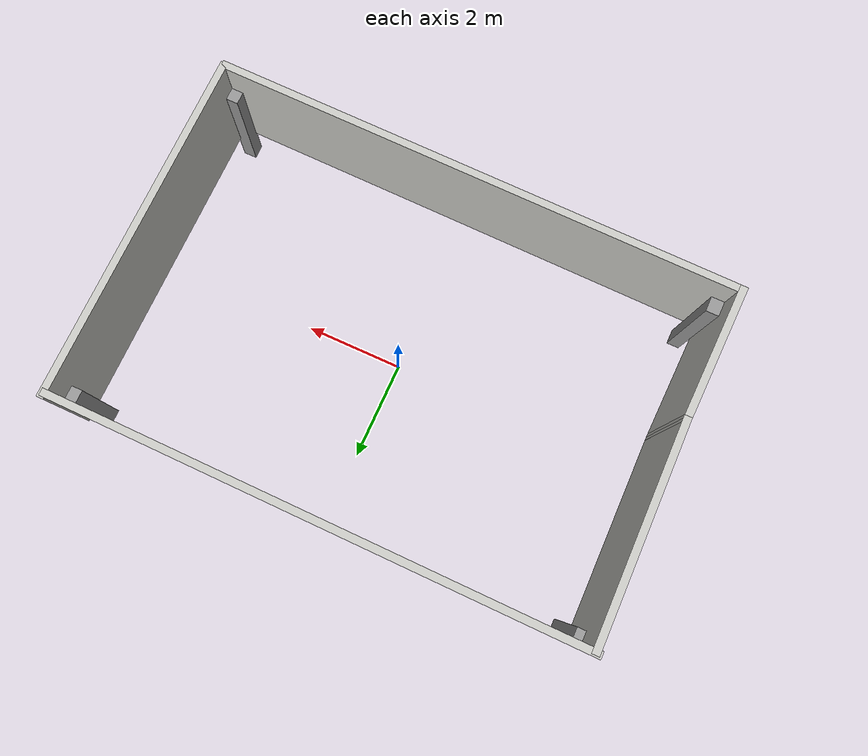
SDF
<?xml version='1.0'?>
<sdf version='1.7'>
  <model name='tello_env'>
    <link name='Wall_3'>
      <pose>-5.30935 -2.12873 0 0 0 -1.60243</pose>
      <self_collide>0</self_collide>
      <enable_wind>0</enable_wind>
      <kinematic>0</kinematic>
      <visual name='Wall_3_Visual'>
        <pose>0 0 1.25 0 -0 0</pose>
        <geometry>
          <box>
            <size>2.83045 0.15 2.5</size>
          </box>
        </geometry>
        <material>
          <script>
            <uri>file://media/materials/scripts/gazebo.material</uri>
            <name>Gazebo/CeilingTiled</name>
          </script>
          <ambient>0.996078 0.47451 0.0196078 1</ambient>
          <shader type='pixel'/>
        </material>
        <meta>
          <layer>0</layer>
        </meta>
        <transparency>0</transparency>
        <cast_shadows>1</cast_shadows>
      </visual>
      <collision name='Wall_3_Collision'>
        <laser_retro>0</laser_retro>
        <max_contacts>10</max_contacts>
        <pose>0 0 1.25 0 -0 0</pose>
        <geometry>
          <box>
            <size>2.83045 0.15 2.5</size>
          </box>
        </geometry>
        <surface>
          <friction>
            <ode>
              <mu>1</mu>
              <mu2>1</mu2>
              <fdir1>0 0 0</fdir1>
              <slip1>0</slip1>
              <slip2>0</slip2>
            </ode>
            <torsional>
              <coefficient>1</coefficient>
              <patch_radius>0</patch_radius>
              <surface_radius>0</surface_radius>
              <use_patch_radius>1</use_patch_radius>
              <ode>
                <slip>0</slip>
              </ode>
            </torsional>
          </friction>
          <bounce>
            <restitution_coefficient>0</restitution_coefficient>
            <threshold>1e+06</threshold>
          </bounce>
          <contact>
            <collide_without_contact>0</collide_without_contact>
            <collide_without_contact_bitmask>1</collide_without_contact_bitmask>
            <collide_bitmask>1</collide_bitmask>
            <ode>
              <soft_cfm>0</soft_cfm>
              <soft_erp>0.2</soft_erp>
              <kp>1e+13</kp>
              <kd>1</kd>
              <max_vel>0.01</max_vel>
              <min_depth>0</min_depth>
            </ode>
            <bullet>
              <split_impulse>1</split_impulse>
              <split_impulse_penetration_threshold>-0.01</split_impulse_penetration_threshold>
              <soft_cfm>0</soft_cfm>
              <soft_erp>0.2</soft_erp>
              <kp>1e+13</kp>
              <kd>1</kd>
            </bullet>
          </contact>
        </surface>
      </collision>
    </link>
    <link name='Wall_4'>
      <pose>-0.015892 -3.51762 0 0 0 -0.009201</pose>
      <self_collide>0</self_collide>
      <enable_wind>0</enable_wind>
      <kinematic>0</kinematic>
      <visual name='Wall_4_Visual'>
        <pose>0 0 1.25 0 -0 0</pose>
        <geometry>
          <box>
            <size>10.8222 0.15 2.5</size>
          </box>
        </geometry>
        <material>
          <script>
            <uri>file://media/materials/scripts/gazebo.material</uri>
            <name>Gazebo/CeilingTiled</name>
          </script>
          <ambient>0.996078 0.47451 0.0196078 1</ambient>
          <shader type='pixel'/>
        </material>
        <meta>
          <layer>0</layer>
        </meta>
        <transparency>0</transparency>
        <cast_shadows>1</cast_shadows>
      </visual>
      <collision name='Wall_4_Collision'>
        <laser_retro>0</laser_retro>
        <max_contacts>10</max_contacts>
        <pose>0 0 1.25 0 -0 0</pose>
        <geometry>
          <box>
            <size>10.8222 0.15 2.5</size>
          </box>
        </geometry>
        <surface>
          <friction>
            <ode>
              <mu>1</mu>
              <mu2>1</mu2>
              <fdir1>0 0 0</fdir1>
              <slip1>0</slip1>
              <slip2>0</slip2>
            </ode>
            <torsional>
              <coefficient>1</coefficient>
              <patch_radius>0</patch_radius>
              <surface_radius>0</surface_radius>
              <use_patch_radius>1</use_patch_radius>
              <ode>
                <slip>0</slip>
              </ode>
            </torsional>
          </friction>
          <bounce>
            <restitution_coefficient>0</restitution_coefficient>
            <threshold>1e+06</threshold>
          </bounce>
          <contact>
            <collide_without_contact>0</collide_without_contact>
            <collide_without_contact_bitmask>1</collide_without_contact_bitmask>
            <collide_bitmask>1</collide_bitmask>
            <ode>
              <soft_cfm>0</soft_cfm>
              <soft_erp>0.2</soft_erp>
              <kp>1e+13</kp>
              <kd>1</kd>
              <max_vel>0.01</max_vel>
              <min_depth>0</min_depth>
            </ode>
            <bullet>
              <split_impulse>1</split_impulse>
              <split_impulse_penetration_threshold>-0.01</split_impulse_penetration_threshold>
              <soft_cfm>0</soft_cfm>
              <soft_erp>0.2</soft_erp>
              <kp>1e+13</kp>
              <kd>1</kd>
            </bullet>
          </contact>
        </surface>
      </collision>
    </link>
    <link name='Wall_5'>
      <pose>5.35407 0.017399 0 0 -0 1.5708</pose>
      <self_collide>0</self_collide>
      <enable_wind>0</enable_wind>
      <kinematic>0</kinematic>
      <visual name='Wall_5_Visual'>
        <pose>0 0 1.25 0 -0 0</pose>
        <geometry>
          <box>
            <size>7.25 0.15 2.5</size>
          </box>
        </geometry>
        <material>
          <script>
            <uri>file://media/materials/scripts/gazebo.material</uri>
            <name>Gazebo/CeilingTiled</name>
          </script>
          <ambient>0.996078 0.47451 0.0196078 1</ambient>
          <shader type='pixel'/>
        </material>
        <meta>
          <layer>0</layer>
        </meta>
        <transparency>0</transparency>
        <cast_shadows>1</cast_shadows>
      </visual>
      <collision name='Wall_5_Collision'>
        <laser_retro>0</laser_retro>
        <max_contacts>10</max_contacts>
        <pose>0 0 1.25 0 -0 0</pose>
        <geometry>
          <box>
            <size>7.25 0.15 2.5</size>
          </box>
        </geometry>
        <surface>
          <friction>
            <ode>
              <mu>1</mu>
              <mu2>1</mu2>
              <fdir1>0 0 0</fdir1>
              <slip1>0</slip1>
              <slip2>0</slip2>
            </ode>
            <torsional>
              <coefficient>1</coefficient>
              <patch_radius>0</patch_radius>
              <surface_radius>0</surface_radius>
              <use_patch_radius>1</use_patch_radius>
              <ode>
                <slip>0</slip>
              </ode>
            </torsional>
          </friction>
          <bounce>
            <restitution_coefficient>0</restitution_coefficient>
            <threshold>1e+06</threshold>
          </bounce>
          <contact>
            <collide_without_contact>0</collide_without_contact>
            <collide_without_contact_bitmask>1</collide_without_contact_bitmask>
            <collide_bitmask>1</collide_bitmask>
            <ode>
              <soft_cfm>0</soft_cfm>
              <soft_erp>0.2</soft_erp>
              <kp>1e+13</kp>
              <kd>1</kd>
              <max_vel>0.01</max_vel>
              <min_depth>0</min_depth>
            </ode>
            <bullet>
              <split_impulse>1</split_impulse>
              <split_impulse_penetration_threshold>-0.01</split_impulse_penetration_threshold>
              <soft_cfm>0</soft_cfm>
              <soft_erp>0.2</soft_erp>
              <kp>1e+13</kp>
              <kd>1</kd>
            </bullet>
          </contact>
        </surface>
      </collision>
    </link>
    <link name='Wall_6'>
      <pose>0.002641 3.5377 0 0 -0 3.14076</pose>
      <self_collide>0</self_collide>
      <enable_wind>0</enable_wind>
      <kinematic>0</kinematic>
      <visual name='Wall_6_Visual'>
        <pose>0 0 1.25 0 -0 0</pose>
        <geometry>
          <box>
            <size>10.7846 0.15 2.5</size>
          </box>
        </geometry>
        <material>
          <script>
            <uri>file://media/materials/scripts/gazebo.material</uri>
            <name>Gazebo/CeilingTiled</name>
          </script>
          <ambient>0.996078 0.47451 0.0196078 1</ambient>
          <shader type='pixel'/>
        </material>
        <meta>
          <layer>0</layer>
        </meta>
        <transparency>0</transparency>
        <cast_shadows>1</cast_shadows>
      </visual>
      <collision name='Wall_6_Collision'>
        <laser_retro>0</laser_retro>
        <max_contacts>10</max_contacts>
        <pose>0 0 1.25 0 -0 0</pose>
        <geometry>
          <box>
            <size>10.7846 0.15 2.5</size>
          </box>
        </geometry>
        <surface>
          <friction>
            <ode>
              <mu>1</mu>
              <mu2>1</mu2>
              <fdir1>0 0 0</fdir1>
              <slip1>0</slip1>
              <slip2>0</slip2>
            </ode>
            <torsional>
              <coefficient>1</coefficient>
              <patch_radius>0</patch_radius>
              <surface_radius>0</surface_radius>
              <use_patch_radius>1</use_patch_radius>
              <ode>
                <slip>0</slip>
              </ode>
            </torsional>
          </friction>
          <bounce>
            <restitution_coefficient>0</restitution_coefficient>
            <threshold>1e+06</threshold>
          </bounce>
          <contact>
            <collide_without_contact>0</collide_without_contact>
            <collide_without_contact_bitmask>1</collide_without_contact_bitmask>
            <collide_bitmask>1</collide_bitmask>
            <ode>
              <soft_cfm>0</soft_cfm>
              <soft_erp>0.2</soft_erp>
              <kp>1e+13</kp>
              <kd>1</kd>
              <max_vel>0.01</max_vel>
              <min_depth>0</min_depth>
            </ode>
            <bullet>
              <split_impulse>1</split_impulse>
              <split_impulse_penetration_threshold>-0.01</split_impulse_penetration_threshold>
              <soft_cfm>0</soft_cfm>
              <soft_erp>0.2</soft_erp>
              <kp>1e+13</kp>
              <kd>1</kd>
            </bullet>
          </contact>
        </surface>
      </collision>
    </link>
    <link name='Wall_7'>
      <pose>-5.27376 1.35953 0 0 0 -1.56763</pose>
      <self_collide>0</self_collide>
      <enable_wind>0</enable_wind>
      <kinematic>0</kinematic>
      <visual name='Wall_7_Visual'>
        <pose>0 0 1.25 0 -0 0</pose>
        <geometry>
          <box>
            <size>4.44695 0.15 2.5</size>
          </box>
        </geometry>
        <material>
          <script>
            <uri>file://media/materials/scripts/gazebo.material</uri>
            <name>Gazebo/CeilingTiled</name>
          </script>
          <ambient>0.996078 0.47451 0.0196078 1</ambient>
          <shader type='pixel'/>
        </material>
        <meta>
          <layer>0</layer>
        </meta>
        <transparency>0</transparency>
        <cast_shadows>1</cast_shadows>
      </visual>
      <collision name='Wall_7_Collision'>
        <laser_retro>0</laser_retro>
        <max_contacts>10</max_contacts>
        <pose>0 0 1.25 0 -0 0</pose>
        <geometry>
          <box>
            <size>4.44695 0.15 2.5</size>
          </box>
        </geometry>
        <surface>
          <friction>
            <ode>
              <mu>1</mu>
              <mu2>1</mu2>
              <fdir1>0 0 0</fdir1>
              <slip1>0</slip1>
              <slip2>0</slip2>
            </ode>
            <torsional>
              <coefficient>1</coefficient>
              <patch_radius>0</patch_radius>
              <surface_radius>0</surface_radius>
              <use_patch_radius>1</use_patch_radius>
              <ode>
                <slip>0</slip>
              </ode>
            </torsional>
          </friction>
          <bounce>
            <restitution_coefficient>0</restitution_coefficient>
            <threshold>1e+06</threshold>
          </bounce>
          <contact>
            <collide_without_contact>0</collide_without_contact>
            <collide_without_contact_bitmask>1</collide_without_contact_bitmask>
            <collide_bitmask>1</collide_bitmask>
            <ode>
              <soft_cfm>0</soft_cfm>
              <soft_erp>0.2</soft_erp>
              <kp>1e+13</kp>
              <kd>1</kd>
              <max_vel>0.01</max_vel>
              <min_depth>0</min_depth>
            </ode>
            <bullet>
              <split_impulse>1</split_impulse>
              <split_impulse_penetration_threshold>-0.01</split_impulse_penetration_threshold>
              <soft_cfm>0</soft_cfm>
              <soft_erp>0.2</soft_erp>
              <kp>1e+13</kp>
              <kd>1</kd>
            </bullet>
          </contact>
        </surface>
      </collision>
    </link>
    <link name='link_1'>
      <inertial>
        <mass>0.145453</mass>
        <inertia>
          <ixx>0.0780546</ixx>
          <ixy>0</ixy>
          <ixz>0</ixz>
          <iyy>0.0779226</iyy>
          <iyz>0</iyz>
          <izz>0.00140396</izz>
        </inertia>
        <pose>0 0 0 0 -0 0</pose>
      </inertial>
      <pose>-5.14452 3.38778 0.219981 0 -0 0</pose>
      <visual name='visual'>
        <pose>0 0 0 0 -0 0</pose>
        <geometry>
          <box>
            <size>0.229058 0.251715 2.52512</size>
          </box>
        </geometry>
        <material>
          <lighting>1</lighting>
          <script>
            <uri>file://media/materials/scripts/gazebo.material</uri>
            <name>Gazebo/Grey</name>
          </script>
          <shader type='pixel'/>
        </material>
        <transparency>0</transparency>
        <cast_shadows>1</cast_shadows>
      </visual>
      <collision name='collision'>
        <laser_retro>0</laser_retro>
        <max_contacts>10</max_contacts>
        <pose>0 0 0 0 -0 0</pose>
        <geometry>
          <box>
            <size>0.229058 0.251715 2.52512</size>
          </box>
        </geometry>
        <surface>
          <friction>
            <ode>
              <mu>1</mu>
              <mu2>1</mu2>
              <fdir1>0 0 0</fdir1>
              <slip1>0</slip1>
              <slip2>0</slip2>
            </ode>
            <torsional>
              <coefficient>1</coefficient>
              <patch_radius>0</patch_radius>
              <surface_radius>0</surface_radius>
              <use_patch_radius>1</use_patch_radius>
              <ode>
                <slip>0</slip>
              </ode>
            </torsional>
          </friction>
          <bounce>
            <restitution_coefficient>0</restitution_coefficient>
            <threshold>1e+06</threshold>
          </bounce>
          <contact>
            <collide_without_contact>0</collide_without_contact>
            <collide_without_contact_bitmask>1</collide_without_contact_bitmask>
            <collide_bitmask>1</collide_bitmask>
            <ode>
              <soft_cfm>0</soft_cfm>
              <soft_erp>0.2</soft_erp>
              <kp>1e+13</kp>
              <kd>1</kd>
              <max_vel>0.01</max_vel>
              <min_depth>0</min_depth>
            </ode>
            <bullet>
              <split_impulse>1</split_impulse>
              <split_impulse_penetration_threshold>-0.01</split_impulse_penetration_threshold>
              <soft_cfm>0</soft_cfm>
              <soft_erp>0.2</soft_erp>
              <kp>1e+13</kp>
              <kd>1</kd>
            </bullet>
          </contact>
        </surface>
      </collision>
    </link>
    <link name='link_3'>
      <inertial>
        <mass>0.209705</mass>
        <inertia>
          <ixx>0.120516</ixx>
          <ixy>0</ixy>
          <ixz>0</ixz>
          <iyy>0.12008</iyy>
          <iyz>0</iyz>
          <izz>0.00284342</izz>
        </inertia>
        <pose>0 0 0 0 -0 0</pose>
      </inertial>
      <pose>-5.13828 -3.23981 0.5 0 -0 0</pose>
      <visual name='visual'>
        <pose>0 0 0 0 -0 0</pose>
        <geometry>
          <box>
            <size>0.262498 0.306275 2.60816</size>
          </box>
        </geometry>
        <material>
          <lighting>1</lighting>
          <script>
            <uri>file://media/materials/scripts/gazebo.material</uri>
            <name>Gazebo/Grey</name>
          </script>
          <shader type='pixel'/>
        </material>
        <transparency>0</transparency>
        <cast_shadows>1</cast_shadows>
      </visual>
      <collision name='collision'>
        <laser_retro>0</laser_retro>
        <max_contacts>10</max_contacts>
        <pose>0 0 0 0 -0 0</pose>
        <geometry>
          <box>
            <size>0.262498 0.306275 2.60816</size>
          </box>
        </geometry>
        <surface>
          <friction>
            <ode>
              <mu>1</mu>
              <mu2>1</mu2>
              <fdir1>0 0 0</fdir1>
              <slip1>0</slip1>
              <slip2>0</slip2>
            </ode>
            <torsional>
              <coefficient>1</coefficient>
              <patch_radius>0</patch_radius>
              <surface_radius>0</surface_radius>
              <use_patch_radius>1</use_patch_radius>
              <ode>
                <slip>0</slip>
              </ode>
            </torsional>
          </friction>
          <bounce>
            <restitution_coefficient>0</restitution_coefficient>
            <threshold>1e+06</threshold>
          </bounce>
          <contact>
            <collide_without_contact>0</collide_without_contact>
            <collide_without_contact_bitmask>1</collide_without_contact_bitmask>
            <collide_bitmask>1</collide_bitmask>
            <ode>
              <soft_cfm>0</soft_cfm>
              <soft_erp>0.2</soft_erp>
              <kp>1e+13</kp>
              <kd>1</kd>
              <max_vel>0.01</max_vel>
              <min_depth>0</min_depth>
            </ode>
            <bullet>
              <split_impulse>1</split_impulse>
              <split_impulse_penetration_threshold>-0.01</split_impulse_penetration_threshold>
              <soft_cfm>0</soft_cfm>
              <soft_erp>0.2</soft_erp>
              <kp>1e+13</kp>
              <kd>1</kd>
            </bullet>
          </contact>
        </surface>
      </collision>
    </link>
    <link name='link_4'>
      <inertial>
        <mass>0.182365</mass>
        <inertia>
          <ixx>0.0831225</ixx>
          <ixy>0</ixy>
          <ixz>0</ixz>
          <iyy>0.0831737</iyy>
          <iyz>0</iyz>
          <izz>0.00238793</izz>
        </inertia>
        <pose>0 0 0 0 -0 0</pose>
      </inertial>
      <pose>5.19454 3.32834 0.5 0 -0 0</pose>
      <visual name='visual'>
        <pose>0 0 0 0 -0 0</pose>
        <geometry>
          <box>
            <size>0.283285 0.277273 2.32223</size>
          </box>
        </geometry>
        <material>
          <lighting>1</lighting>
          <script>
            <uri>file://media/materials/scripts/gazebo.material</uri>
            <name>Gazebo/Grey</name>
          </script>
          <shader type='pixel'/>
        </material>
        <transparency>0</transparency>
        <cast_shadows>1</cast_shadows>
      </visual>
      <collision name='collision'>
        <laser_retro>0</laser_retro>
        <max_contacts>10</max_contacts>
        <pose>0 0 0 0 -0 0</pose>
        <geometry>
          <box>
            <size>0.283285 0.277273 2.32223</size>
          </box>
        </geometry>
        <surface>
          <friction>
            <ode>
              <mu>1</mu>
              <mu2>1</mu2>
              <fdir1>0 0 0</fdir1>
              <slip1>0</slip1>
              <slip2>0</slip2>
            </ode>
            <torsional>
              <coefficient>1</coefficient>
              <patch_radius>0</patch_radius>
              <surface_radius>0</surface_radius>
              <use_patch_radius>1</use_patch_radius>
              <ode>
                <slip>0</slip>
              </ode>
            </torsional>
          </friction>
          <bounce>
            <restitution_coefficient>0</restitution_coefficient>
            <threshold>1e+06</threshold>
          </bounce>
          <contact>
            <collide_without_contact>0</collide_without_contact>
            <collide_without_contact_bitmask>1</collide_without_contact_bitmask>
            <collide_bitmask>1</collide_bitmask>
            <ode>
              <soft_cfm>0</soft_cfm>
              <soft_erp>0.2</soft_erp>
              <kp>1e+13</kp>
              <kd>1</kd>
              <max_vel>0.01</max_vel>
              <min_depth>0</min_depth>
            </ode>
            <bullet>
              <split_impulse>1</split_impulse>
              <split_impulse_penetration_threshold>-0.01</split_impulse_penetration_threshold>
              <soft_cfm>0</soft_cfm>
              <soft_erp>0.2</soft_erp>
              <kp>1e+13</kp>
              <kd>1</kd>
            </bullet>
          </contact>
        </surface>
      </collision>
    </link>
    <link name='link_5'>
      <inertial>
        <mass>0.201819</mass>
        <inertia>
          <ixx>0.107326</ixx>
          <ixy>0</ixy>
          <ixz>0</ixz>
          <iyy>0.107282</iyy>
          <iyz>0</iyz>
          <izz>0.0027057</izz>
        </inertia>
        <pose>0 0 0 0 -0 0</pose>
      </inertial>
      <pose>5.17248 -3.37774 0.5 0 -0 0</pose>
      <visual name='visual'>
        <pose>0 0 0 0 -0 0</pose>
        <geometry>
          <box>
            <size>0.281288 0.285931 2.50994</size>
          </box>
        </geometry>
        <material>
          <lighting>1</lighting>
          <script>
            <uri>file://media/materials/scripts/gazebo.material</uri>
            <name>Gazebo/Grey</name>
          </script>
          <shader type='pixel'/>
        </material>
        <transparency>0</transparency>
        <cast_shadows>1</cast_shadows>
      </visual>
      <collision name='collision'>
        <laser_retro>0</laser_retro>
        <max_contacts>10</max_contacts>
        <pose>0 0 0 0 -0 0</pose>
        <geometry>
          <box>
            <size>0.281288 0.285931 2.50994</size>
          </box>
        </geometry>
        <surface>
          <friction>
            <ode>
              <mu>1</mu>
              <mu2>1</mu2>
              <fdir1>0 0 0</fdir1>
              <slip1>0</slip1>
              <slip2>0</slip2>
            </ode>
            <torsional>
              <coefficient>1</coefficient>
              <patch_radius>0</patch_radius>
              <surface_radius>0</surface_radius>
              <use_patch_radius>1</use_patch_radius>
              <ode>
                <slip>0</slip>
              </ode>
            </torsional>
          </friction>
          <bounce>
            <restitution_coefficient>0</restitution_coefficient>
            <threshold>1e+06</threshold>
          </bounce>
          <contact>
            <collide_without_contact>0</collide_without_contact>
            <collide_without_contact_bitmask>1</collide_without_contact_bitmask>
            <collide_bitmask>1</collide_bitmask>
            <ode>
              <soft_cfm>0</soft_cfm>
              <soft_erp>0.2</soft_erp>
              <kp>1e+13</kp>
              <kd>1</kd>
              <max_vel>0.01</max_vel>
              <min_depth>0</min_depth>
            </ode>
            <bullet>
              <split_impulse>1</split_impulse>
              <split_impulse_penetration_threshold>-0.01</split_impulse_penetration_threshold>
              <soft_cfm>0</soft_cfm>
              <soft_erp>0.2</soft_erp>
              <kp>1e+13</kp>
              <kd>1</kd>
            </bullet>
          </contact>
        </surface>
      </collision>
    </link>
    <static>1</static>
    <allow_auto_disable>1</allow_auto_disable>
  </model>
</sdf>
